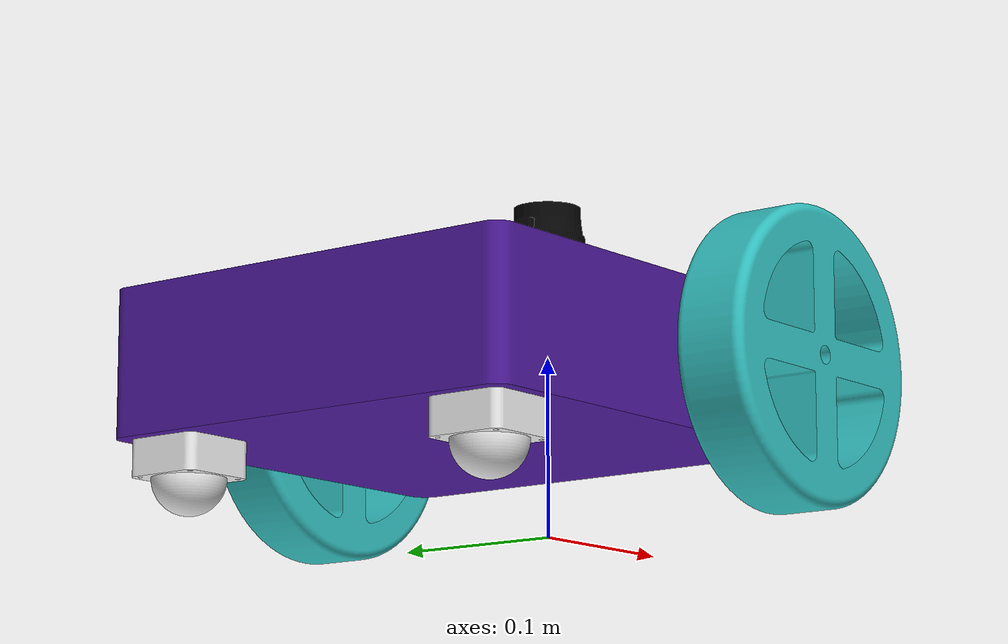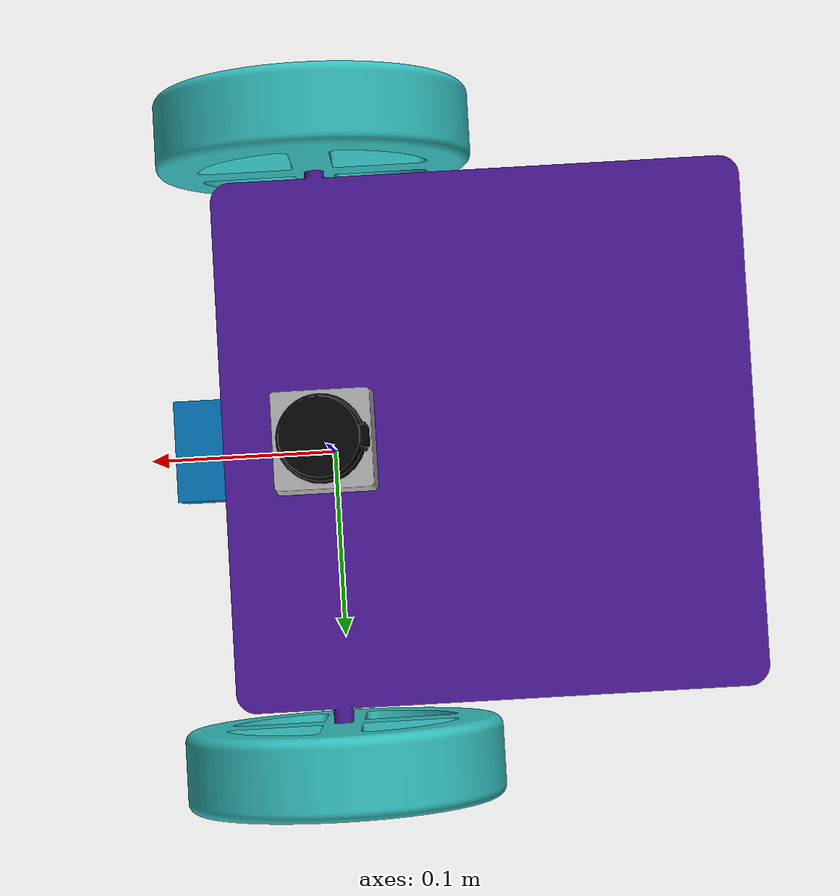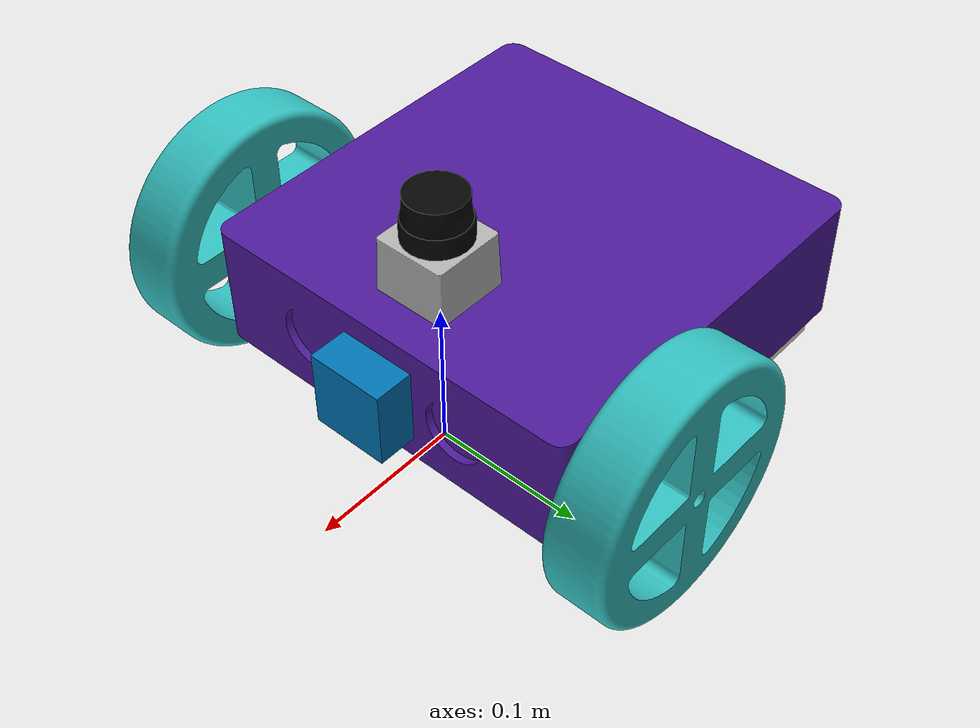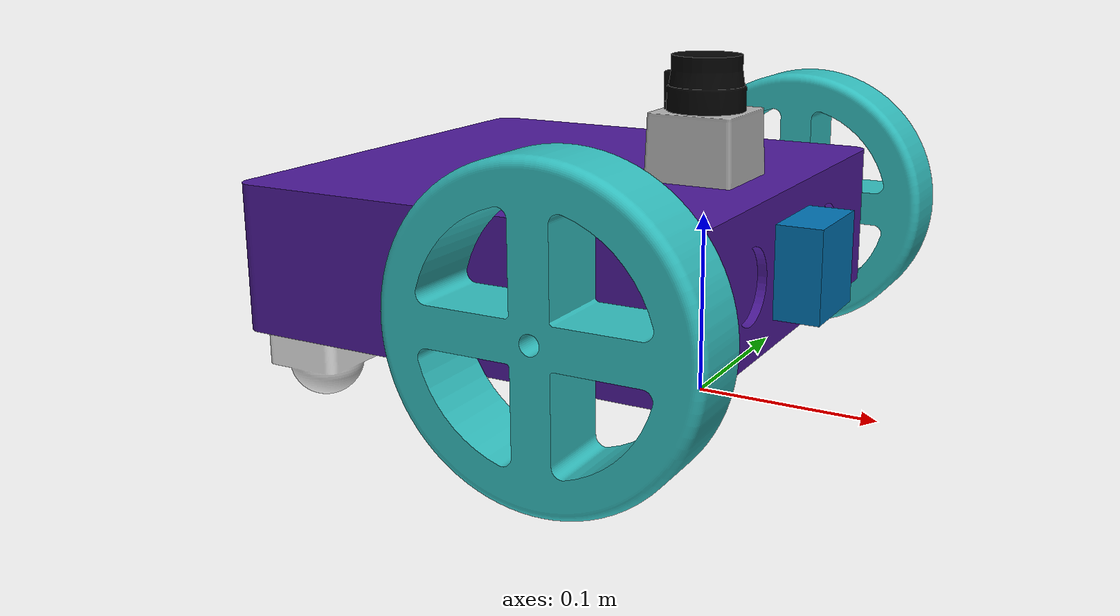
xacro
<?xml version="1.0"?>
<robot xmlns:xacro="http://www.ros.org/wiki/xacro" name="dew_ros_robot">

    <!--include file dependent -->
    <xacro:include filename="$(find robot_description)/urdf/properties.xacro"/>
    <xacro:include filename="$(find robot_description)/urdf/chassis.xacro"/>
    <xacro:include filename="$(find robot_description)/urdf/wheel.xacro"/>

    <!-- use chassis-->
    <xacro:chassis/>

    <!--use left wheel and set parametor -->
    <xacro:wheel
    name="left"
    traslation="0 ${WHEEL_length /2} 0"
    rotation="${PI/2}  0 0"
    parent="base_link"/>

    <!--use right wheel and set parametor -->
    <xacro:wheel
    name="right"
    traslation="0 ${-WHEEL_length /2} 0"
    rotation="${PI/2}  0 0"
    parent="base_link"/>

    <!-- include gazebo data and plugin -->
    <xacro:include filename="$(find robot_description)/urdf/config.gazebo"/>

</robot>

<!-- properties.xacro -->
<robot xmlns:xacro="http://www.ros.org/wiki/xacro">

    <xacro:property name="PI" value="3.14159265359"/>
    <xacro:property name="WHEEL_RADIUS" value="0.08"/>

    <!-- wheel use parametor -->
    <xacro:property name="U_MAX" value="10.0"/>
    <xacro:property name="V_MAX" value="20.0"/>
    <xacro:property name="WHEEL_JOINT_DAMP" value="0.3"/>
    <xacro:property name="WHEEL_length" value="0.32"/>

    <!-- chassis inertia from solidwork-->
    <xacro:property name="CHASSIS_COM_XYZ" value="-0.0821 0 0"/>
    <xacro:property name="CHASSIS_M" value="5.50034"/>
    <xacro:property name="CHASSIS_IXX" value="0.03394893"/>
    <xacro:property name="CHASSIS_IXY" value="0.0"/>
    <xacro:property name="CHASSIS_IXZ" value="0.00000299776"/>
    <xacro:property name="CHASSIS_IYY" value="0.03370971"/>
    <xacro:property name="CHASSIS_IYZ" value="0.0"/>
    <xacro:property name="CHASSIS_IZZ" value="0.06178697"/>

    <!-- support wheel inertia from solidwork-->
    <xacro:property name="S_WHEEL_COM_XYZ" value="0 0.000479 0"/>
    <xacro:property name="S_WHEEL_M" value="0.05739"/>
    <xacro:property name="S_WHEEL_IXX" value="0.00001337476"/>
    <xacro:property name="S_WHEEL_IXY" value="0.0"/>
    <xacro:property name="S_WHEEL_IXZ" value="0.0"/>
    <xacro:property name="S_WHEEL_IYY" value="0.00001590104"/>
    <xacro:property name="S_WHEEL_IYZ" value="0.0"/>
    <xacro:property name="S_WHEEL_IZZ" value="0.00001337476"/>

    <!-- wheel inertia from solidwork-->
    <xacro:property name="WHEEL_COM_XYZ" value="0 0 0"/>
    <xacro:property name="WHEEL_M" value="0.532"/>
    <xacro:property name="WHEEL_IXX" value="0.0010737912"/>
    <xacro:property name="WHEEL_IXY" value="0.0"/>
    <xacro:property name="WHEEL_IXZ" value="0.0"/>
    <xacro:property name="WHEEL_IYY" value="0.0010737912"/>
    <xacro:property name="WHEEL_IYZ" value="0.0"/>
    <xacro:property name="WHEEL_IZZ" value="0.0020081458"/>

</robot>

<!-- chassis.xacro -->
<robot xmlns:xacro="http://www.ros.org/wiki/xacro" name="robot_chassis">

    <!-- use parameter form properties.xacro -->
    <xacro:include filename="$(find robot_description)/urdf/properties.xacro"/>

    <!-- camera variable -->
    <xacro:property name="camera_link" value="0.05" /> <!-- Size of square 'camera' box -->

    <!-- robot -->
    <xacro:macro name="chassis" params="">

    <!--************* base_footprint urdf *************-->

        <link name="base_footprint"/>
        <!-- joint base_footprint to base_link-->
        <joint name="base_footprint_to_base_link" type="fixed">
            <parent link="base_footprint"/>
            <child link="base_link"/>
            <origin xyz="0.0 0.0 0.08" rpy="0.0 0.0 0.0"/>
        </joint>

        <link name="base_link">

            <!-- physic parameter for Gazebo-->
            <inertial>
                <origin xyz="${CHASSIS_COM_XYZ}" rpy="0 0 0"/>
                <mass value="${CHASSIS_M}"/>
                <inertia ixx="${CHASSIS_IXX}" ixy="${CHASSIS_IXY}" ixz="${CHASSIS_IXZ}" iyy="${CHASSIS_IYY}" iyz="${CHASSIS_IYZ}" izz="${CHASSIS_IZZ}"/>
            </inertial>

            <!-- import chassis.STL file and set position-->
            <visual>
                <origin xyz="-0.08 0.0 0.0" rpy="0.0 0.0 0.0"/>
                <geometry>
                    <mesh filename="package://robot_description/meshes/stl/chassis.STL"/>
                </geometry>
            </visual>

            <!-- add  collision-->
            <collision>
                <origin xyz="-0.08 0.0 0.0" rpy="0.0 0.0 0.0"/>
                <geometry>
                    <box size="0.26 0.26 0.08"/>
                </geometry>
            </collision>

        </link>

    <!--************* support_wheel_L urdf **************-->

        <!--joint base_link_to_support_wheel left-->
        <joint name="base_link_to_support_wheel_L" type="fixed">
            <parent link="base_link"/>
            <child link="support_wheel_link_L"/>
            <origin xyz="-0.18 0.1 -0.06" rpy="${PI/2}  0.0 0.0"/>
        </joint>

        <link name="support_wheel_link_L">
            <!-- physic parameter for Gazebo-->
            <inertial>
                <origin xyz="${S_WHEEL_COM_XYZ}" rpy="0 0 0"/>
                <mass value="${S_WHEEL_M}"/>
                <inertia ixx="${S_WHEEL_IXX}" ixy="${S_WHEEL_IXY}" ixz="${S_WHEEL_IXZ}" iyy="${S_WHEEL_IYY}" iyz="${S_WHEEL_IYZ}" izz="${S_WHEEL_IZZ}"/>
            </inertial>

            <!-- import support_wheel.STL file and set position-->
            <visual>
                <origin xyz="0.0 0.0 0.0" rpy="0.0 0.0 0.0"/>
                <geometry>
                    <mesh filename="package://robot_description/meshes/stl/support_wheel.STL"/>
                </geometry>
            </visual>
            <!--add colition -->
            <collision>
                <origin xyz="0.0 0.0 0.0" rpy="0.0 0.0 0.0"/>
                <geometry>
                    <mesh filename="package://robot_description/meshes/stl/support_wheel.STL"/>
                </geometry>
            </collision>

        </link>

    <!--************ support_wheel_R urdf*************-->

        <!--joint base_link_to_support_wheel right-->
        <joint name="base_link_to_support_wheel_R" type="fixed">
            <parent link="base_link"/>
            <child link="support_wheel_link_R"/>
            <origin xyz="-0.18 -0.1 -0.06" rpy="${PI/2}  0.0 0.0"/>
        </joint>

        <link name="support_wheel_link_R">
            <!-- physic parameter for Gazebo-->
            <inertial>
                <origin xyz="${S_WHEEL_COM_XYZ}" rpy="0 0 0"/>
                <mass value="${S_WHEEL_M}"/>
                <inertia ixx="${S_WHEEL_IXX}" ixy="${S_WHEEL_IXY}" ixz="${S_WHEEL_IXZ}" iyy="${S_WHEEL_IYY}" iyz="${S_WHEEL_IYZ}" izz="${S_WHEEL_IZZ}"/>
            </inertial>
            <!-- import support_wheel.STL file and set position-->
            <visual>
                <origin xyz="0.0 0.0 0.0" rpy="0.0 0.0 0.0"/>
                <geometry>
                    <mesh filename="package://robot_description/meshes/stl/support_wheel.STL"/>
                </geometry>
            </visual>
            <!--add colition -->
            <collision>
                <origin xyz="0.0 0.0 0.0" rpy="0.0 0.0 0.0"/>
                <geometry>
                    <mesh filename="package://robot_description/meshes/stl/support_wheel.STL"/>
                </geometry>
            </collision>

        </link>

    <!--*********** Camera ***********-->

        <joint name="camera_joint" type="fixed">
            <axis xyz="0 1 0" />
            <origin xyz="0.05 0 0" rpy="0 0 0"/>
            <parent link="base_link"/>
            <child link="camera_link"/>
        </joint>

        <link name="camera_link">
            <collision>
                <origin xyz="0 0 0" rpy="0 0 0"/>
                <geometry>
                    <box size="${camera_link} ${camera_link} ${camera_link}"/>
                </geometry>
            </collision>

            <visual>
                <origin xyz="0 0 0" rpy="0 0 0"/>
                <geometry>
                    <box size="${camera_link} ${camera_link} ${camera_link}"/>
                </geometry>
            </visual>

            <inertial>
                <mass value="1e-5" />
                <origin xyz="0 0 0" rpy="0 0 0"/>
                    <inertia ixx="1e-6" ixy="0" ixz="0" iyy="1e-6" iyz="0" izz="1e-6" />
            </inertial>
        </link>

    <!--*********** Hokuyo Laser ************-->

    <link name="hokuyo_link">
        <collision>
            <origin xyz="0 0 0" rpy="0 0 0"/>
            <geometry>
                <box size="0.1 0.1 0.1"/>
            </geometry>
        </collision>

        <visual>
            <origin xyz="0 0 0" rpy="0 0 0"/>
            <geometry>
                <mesh filename="package://robot_description/meshes/hokuyo.dae"/>
            </geometry>
        </visual>

        <inertial>
            <mass value="1e-5" />
            <origin xyz="0 0 0" rpy="0 0 0"/>
            <inertia ixx="1e-6" ixy="0" ixz="0" iyy="1e-6" iyz="0" izz="1e-6" />
        </inertial>
    </link>

    <joint name="hokuyo_joint" type="fixed">
        <axis xyz="0 1 0" />
        <origin xyz="0 0 0.07" rpy="0 0 0"/>
        <parent link="base_link"/>
        <child link="hokuyo_link"/>
    </joint>

    </xacro:macro>

</robot>

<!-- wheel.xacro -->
<robot xmlns:xacro="http://www.ros.org/wiki/xacro" name="wheel">

    <xacro:include filename="$(find robot_description)/urdf/properties.xacro"/>

    <xacro:macro name="wheel" params="name traslation rotation parent">

        <link name="${name}_wheel">

            <!-- physic parameter for Gazebo-->
            <inertial>
                <origin xyz="${WHEEL_COM_XYZ}" rpy="0 0 0"/>
                <mass value="${WHEEL_M}"/>
                <inertia ixx="${WHEEL_IXX}" ixy="${WHEEL_IXY}" ixz="${WHEEL_IXZ}" iyy="${WHEEL_IYY}" iyz="${WHEEL_IYZ}" izz="${WHEEL_IZZ}"/>
            </inertial>

            <!-- import wheel.STL file and set position-->
            <visual>
                <origin xyz="0.0 0.0 0.0" rpy="0.0 0.0 0.0"/>
                <geometry>
                    <mesh filename="package://robot_description/meshes/stl/wheel.STL"/>
                </geometry>
            </visual>

            <!--add colition -->
            <collision>
                <origin xyz="0.0 0.0 0.0" rpy="0.0 0.0 0.0"/>
                <geometry>
                    <cylinder radius="0.08" length="0.04"/>
                </geometry>
            </collision>

        </link>

        <!-- defind joint wheel-->
        <joint name="${name}_wheel_joint" type="continuous">
            <origin xyz="${traslation}" rpy="${rotation}"/>
            <parent link="${parent}"/>
            <child link="${name}_wheel"/>
            <axis xyz="0.0 0.0 -1.0"/>
            <limit effort="${U_MAX}" velocity="${V_MAX}"/>
            <dynamics damping="${WHEEL_JOINT_DAMP}"/>
        </joint>

    </xacro:macro>

</robot>
